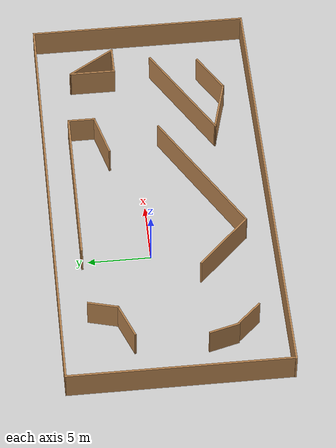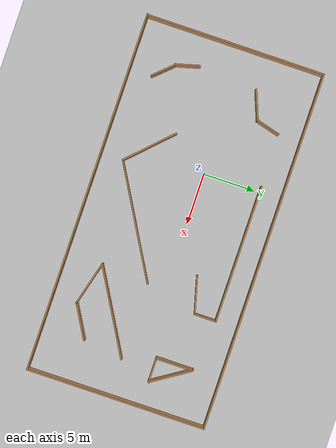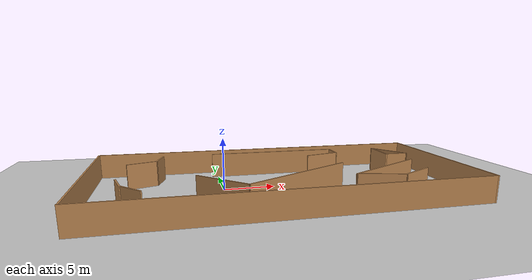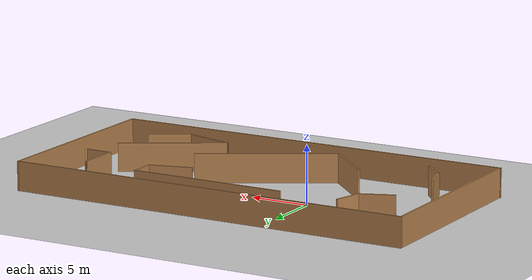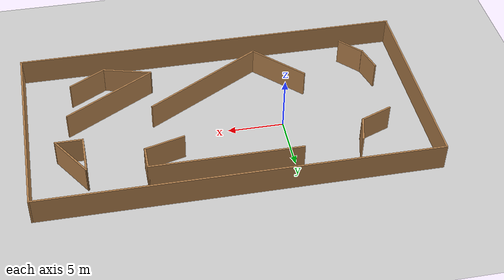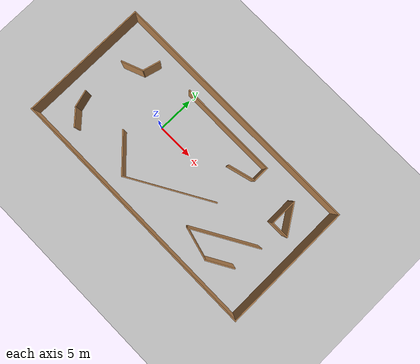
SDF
<sdf version="1.6">
 <world name="default">
  <light name="sun" type="directional">
   <pose>0 0 10 0 -0 0</pose>
   <diffuse>0.8 0.8 0.8 1</diffuse>
   <specular>0.2 0.2 0.2 1</specular>
   <attenuation>
    <range>1000</range>
    <constant>0.9</constant>
    <linear>0.01</linear>
    <quadratic>0.001</quadratic>
   </attenuation>
   <direction>-0.5 0.1 -0.9</direction>
  </light>
  <model name="ground_plane">
   <static>1</static>
   <link name="link">
    <collision name="collision">
     <geometry><plane><normal>0 0 1</normal><size>100 100</size></plane></geometry>
     <surface>
      <contact><collide_bitmask>65535</collide_bitmask></contact>
      <friction><ode><mu>100</mu><mu2>50</mu2></ode></friction>
     </surface>
    </collision>
    <visual name="visual">
     <cast_shadows>0</cast_shadows>
     <geometry><plane><normal>0 0 1</normal><size>100 100</size></plane></geometry>
     <material>
      <script><uri>file://media/materials/scripts/gazebo.material</uri><name>Gazebo/Grey</name></script>
     </material>
    </visual>
   </link>
  </model>
  <gravity>0 0 -9.8</gravity>
  <magnetic_field>6e-06 2.3e-05 -4.2e-05</magnetic_field>
  <atmosphere type="adiabatic"/>
  <physics name="default_physics" default="0" type="ode">
   <max_step_size>0.001</max_step_size>
   <real_time_factor>1</real_time_factor>
   <real_time_update_rate>1000</real_time_update_rate>
  </physics>
  <scene><ambient>0.4 0.4 0.4 1</ambient><background>0.7 0.7 0.7 1</background><shadows>1</shadows></scene>
  <audio><device>default</device></audio>
  <spherical_coordinates>
   <surface_model>EARTH_WGS84</surface_model>
   <latitude_deg>0</latitude_deg>
   <longitude_deg>0</longitude_deg>
   <elevation>0</elevation>
   <heading_deg>0</heading_deg>
  </spherical_coordinates>
  <model name="Sandbox_nav">
   <pose>5.14917 -1.10159 0 0 -0 0</pose>
   <link name="Wall_10">
    <collision name="Wall_10_Collision">
     <geometry><box><size>2.5 0.15 2.5</size></box></geometry>
     <pose>0 0 1.25 0 -0 0</pose>
    </collision>
    <visual name="Wall_10_Visual">
     <pose>0 0 1.25 0 -0 0</pose>
     <geometry><box><size>2.5 0.15 2.5</size></box></geometry>
     <material>
      <script><uri>file://media/materials/scripts/gazebo.material</uri><name>Gazebo/Wood</name></script>
      <ambient>1 1 1 1</ambient>
     </material>
     <meta><layer>0</layer></meta>
    </visual>
    <pose>-11.1858 5.38005 0 0 -0 -1.8326</pose>
   </link>
   <link name="Wall_11">
    <collision name="Wall_11_Collision">
     <geometry><box><size>3.04858 0.15 2.5</size></box></geometry>
     <pose>0 0 1.25 0 -0 0</pose>
    </collision>
    <visual name="Wall_11_Visual">
     <pose>0 0 1.25 0 -0 0</pose>
     <geometry><box><size>3.04858 0.15 2.5</size></box></geometry>
     <material>
      <script><uri>file://media/materials/scripts/gazebo.material</uri><name>Gazebo/Wood</name></script>
      <ambient>1 1 1 1</ambient>
     </material>
     <meta><layer>0</layer></meta>
    </visual>
    <pose>-12.8406 3.71958 0 0 -0 -2.77054</pose>
   </link>
   <link name="Wall_13">
    <collision name="Wall_13_Collision">
     <geometry><box><size>13.5 0.15 2.5</size></box></geometry>
     <pose>0 0 1.25 0 -0 0</pose>
    </collision>
    <visual name="Wall_13_Visual">
     <pose>0 0 1.25 0 -0 0</pose>
     <geometry><box><size>13.5 0.15 2.5</size></box></geometry>
     <material>
      <script><uri>file://media/materials/scripts/gazebo.material</uri><name>Gazebo/Wood</name></script>
      <ambient>1 1 1 1</ambient>
     </material>
     <meta><layer>0</layer></meta>
    </visual>
    <pose>0.975034 6.59525 0 0 -0 0</pose>
   </link>
   <link name="Wall_14">
    <collision name="Wall_14_Collision">
     <geometry><box><size>2.25 0.15 2.5</size></box></geometry>
     <pose>0 0 1.25 0 -0 0</pose>
    </collision>
    <visual name="Wall_14_Visual">
     <pose>0 0 1.25 0 -0 0</pose>
     <geometry><box><size>2.25 0.15 2.5</size></box></geometry>
     <material>
      <script><uri>file://media/materials/scripts/gazebo.material</uri><name>Gazebo/Wood</name></script>
      <ambient>1 1 1 1</ambient>
     </material>
     <meta><layer>0</layer></meta>
    </visual>
    <pose>7.65003 5.54525 0 0 -0 -1.5708</pose>
   </link>
   <link name="Wall_15">
    <collision name="Wall_15_Collision">
     <geometry><box><size>3.75 0.15 2.5</size></box></geometry>
     <pose>0 0 1.25 0 -0 0</pose>
    </collision>
    <visual name="Wall_15_Visual">
     <pose>0 0 1.25 0 -0 0</pose>
     <geometry><box><size>3.75 0.15 2.5</size></box></geometry>
     <material>
      <script><uri>file://media/materials/scripts/gazebo.material</uri><name>Gazebo/Wood</name></script>
      <ambient>1 1 1 1</ambient>
     </material>
     <meta><layer>0</layer></meta>
    </visual>
    <pose>5.91137 4.02938 0 0 -0 -2.87979</pose>
   </link>
   <link name="Wall_17">
    <collision name="Wall_17_Collision">
     <geometry><box><size>2.5 0.15 2.5</size></box></geometry>
     <pose>0 0 1.25 0 -0 0</pose>
    </collision>
    <visual name="Wall_17_Visual">
     <pose>0 0 1.25 0 -0 0</pose>
     <geometry><box><size>2.5 0.15 2.5</size></box></geometry>
     <material>
      <script><uri>file://media/materials/scripts/gazebo.material</uri><name>Gazebo/Wood</name></script>
      <ambient>1 1 1 1</ambient>
     </material>
     <meta><layer>0</layer></meta>
    </visual>
    <pose>-14.2871 -3.67129 0 0 -0 -1.309</pose>
   </link>
   <link name="Wall_18">
    <collision name="Wall_18_Collision">
     <geometry><box><size>2.53676 0.15 2.5</size></box></geometry>
     <pose>0 0 1.25 0 -0 0</pose>
    </collision>
    <visual name="Wall_18_Visual">
     <pose>0 0 1.25 0 -0 0</pose>
     <geometry><box><size>2.53676 0.15 2.5</size></box></geometry>
     <material>
      <script><uri>file://media/materials/scripts/gazebo.material</uri><name>Gazebo/Wood</name></script>
      <ambient>1 1 1 1</ambient>
     </material>
     <meta><layer>0</layer></meta>
    </visual>
    <pose>-13.0985 -5.67914 0 0 -0 -0.820423</pose>
   </link>
   <link name="Wall_20">
    <collision name="Wall_20_Collision">
     <geometry><box><size>5.75 0.15 2.5</size></box></geometry>
     <pose>0 0 1.25 0 -0 0</pose>
    </collision>
    <visual name="Wall_20_Visual">
     <pose>0 0 1.25 0 -0 0</pose>
     <geometry><box><size>5.75 0.15 2.5</size></box></geometry>
     <material>
      <script><uri>file://media/materials/scripts/gazebo.material</uri><name>Gazebo/Wood</name></script>
      <ambient>1 1 1 1</ambient>
     </material>
     <meta><layer>0</layer></meta>
    </visual>
    <pose>-5.88942 -4.58699 0 0 -0 -0.785398</pose>
   </link>
   <link name="Wall_21">
    <collision name="Wall_21_Collision">
     <geometry><box><size>12 0.15 2.5</size></box></geometry>
     <pose>0 0 1.25 0 -0 0</pose>
    </collision>
    <visual name="Wall_21_Visual">
     <pose>0 0 1.25 0 -0 0</pose>
     <geometry><box><size>12 0.15 2.5</size></box></geometry>
     <material>
      <script><uri>file://media/materials/scripts/gazebo.material</uri><name>Gazebo/Wood</name></script>
      <ambient>1 1 1 1</ambient>
     </material>
     <meta><layer>0</layer></meta>
    </visual>
    <pose>1.22168 -3.60439 0 0 -0 0.523599</pose>
   </link>
   <link name="Wall_23">
    <collision name="Wall_23_Collision">
     <geometry><box><size>9.25 0.15 2.5</size></box></geometry>
     <pose>0 0 1.25 0 -0 0</pose>
    </collision>
    <visual name="Wall_23_Visual">
     <pose>0 0 1.25 0 -0 0</pose>
     <geometry><box><size>9.25 0.15 2.5</size></box></geometry>
     <material>
      <script><uri>file://media/materials/scripts/gazebo.material</uri><name>Gazebo/Wood</name></script>
      <ambient>1 1 1 1</ambient>
     </material>
     <meta><layer>0</layer></meta>
    </visual>
    <pose>9.91268 -2.97165 0 0 -0 -2.61799</pose>
   </link>
   <link name="Wall_24">
    <collision name="Wall_24_Collision">
     <geometry><box><size>4.5 0.15 2.5</size></box></geometry>
     <pose>0 0 1.25 0 -0 0</pose>
    </collision>
    <visual name="Wall_24_Visual">
     <pose>0 0 1.25 0 -0 0</pose>
     <geometry><box><size>4.5 0.15 2.5</size></box></geometry>
     <material>
      <script><uri>file://media/materials/scripts/gazebo.material</uri><name>Gazebo/Wood</name></script>
      <ambient>1 1 1 1</ambient>
     </material>
     <meta><layer>0</layer></meta>
    </visual>
    <pose>8.07316 -5.80958 0 0 -0 -0.261799</pose>
   </link>
   <link name="Wall_25">
    <collision name="Wall_25_Collision">
     <geometry><box><size>3.75 0.15 2.5</size></box></geometry>
     <pose>0 0 1.25 0 -0 0</pose>
    </collision>
    <visual name="Wall_25_Visual">
     <pose>0 0 1.25 0 -0 0</pose>
     <geometry><box><size>3.75 0.15 2.5</size></box></geometry>
     <material>
      <script><uri>file://media/materials/scripts/gazebo.material</uri><name>Gazebo/Wood</name></script>
      <ambient>1 1 1 1</ambient>
     </material>
     <meta><layer>0</layer></meta>
    </visual>
    <pose>11.7329 -5.47251 0 0 -0 0.523599</pose>
   </link>
   <link name="Wall_27">
    <collision name="Wall_27_Collision">
     <geometry><box><size>3.75 0.15 2.5</size></box></geometry>
     <pose>0 0 1.25 0 -0 0</pose>
    </collision>
    <visual name="Wall_27_Visual">
     <pose>0 0 1.25 0 -0 0</pose>
     <geometry><box><size>3.75 0.15 2.5</size></box></geometry>
     <material>
      <script><uri>file://media/materials/scripts/gazebo.material</uri><name>Gazebo/Wood</name></script>
      <ambient>1 1 1 1</ambient>
     </material>
     <meta><layer>0</layer></meta>
    </visual>
    <pose>12.721 4.22527 0 0 -0 -1.5708</pose>
   </link>
   <link name="Wall_29">
    <collision name="Wall_29_Collision">
     <geometry><box><size>2.5 0.15 2.5</size></box></geometry>
     <pose>0 0 1.25 0 -0 0</pose>
    </collision>
    <visual name="Wall_29_Visual">
     <pose>0 0 1.25 0 -0 0</pose>
     <geometry><box><size>2.5 0.15 2.5</size></box></geometry>
     <material>
      <script><uri>file://media/materials/scripts/gazebo.material</uri><name>Gazebo/Wood</name></script>
      <ambient>1 1 1 1</ambient>
     </material>
     <meta><layer>0</layer></meta>
    </visual>
    <pose>13.896 2.42527 0 0 -0 0</pose>
   </link>
   <link name="Wall_3">
    <collision name="Wall_3_Collision">
     <geometry><box><size>35.25 0.15 2.5</size></box></geometry>
     <pose>0 0 1.25 0 -0 0</pose>
    </collision>
    <visual name="Wall_3_Visual">
     <pose>0 0 1.25 0 -0 0</pose>
     <geometry><box><size>35.25 0.15 2.5</size></box></geometry>
     <material>
      <script><uri>file://media/materials/scripts/gazebo.material</uri><name>Gazebo/Wood</name></script>
      <ambient>1 1 1 1</ambient>
     </material>
     <meta><layer>0</layer></meta>
    </visual>
    <pose>-0.035457 -8.75637 0 0 -0 0</pose>
   </link>
   <link name="Wall_30">
    <collision name="Wall_30_Collision">
     <geometry><box><size>4.44913 0.15 2.5</size></box></geometry>
     <pose>0 0 1.25 0 -0 0</pose>
    </collision>
    <visual name="Wall_30_Visual">
     <pose>0 0 1.25 0 -0 0</pose>
     <geometry><box><size>4.44913 0.15 2.5</size></box></geometry>
     <material>
      <script><uri>file://media/materials/scripts/gazebo.material</uri><name>Gazebo/Wood</name></script>
      <ambient>1 1 1 1</ambient>
     </material>
     <meta><layer>0</layer></meta>
    </visual>
    <pose>13.896 4.22527 0 0 -0 2.14912</pose>
   </link>
   <link name="Wall_4">
    <collision name="Wall_4_Collision">
     <geometry><box><size>17.6631 0.15 2.5</size></box></geometry>
     <pose>0 0 1.25 0 -0 0</pose>
    </collision>
    <visual name="Wall_4_Visual">
     <pose>0 0 1.25 0 -0 0</pose>
     <geometry><box><size>17.6631 0.15 2.5</size></box></geometry>
     <material>
      <script><uri>file://media/materials/scripts/gazebo.material</uri><name>Gazebo/Wood</name></script>
      <ambient>1 1 1 1</ambient>
     </material>
     <meta><layer>0</layer></meta>
    </visual>
    <pose>17.5671 -0 0 0 -0 1.57287</pose>
   </link>
   <link name="Wall_5">
    <collision name="Wall_5_Collision">
     <geometry><box><size>35.25 0.15 2.5</size></box></geometry>
     <pose>0 0 1.25 0 -0 0</pose>
    </collision>
    <visual name="Wall_5_Visual">
     <pose>0 0 1.25 0 -0 0</pose>
     <geometry><box><size>35.25 0.15 2.5</size></box></geometry>
     <material>
      <script><uri>file://media/materials/scripts/gazebo.material</uri><name>Gazebo/Wood</name></script>
      <ambient>1 1 1 1</ambient>
     </material>
     <meta><layer>0</layer></meta>
    </visual>
    <pose>-0.001077 8.75637 0 0 -0 3.14159</pose>
   </link>
   <link name="Wall_6">
    <collision name="Wall_6_Collision">
     <geometry><box><size>17.5 0.15 2.5</size></box></geometry>
     <pose>0 0 1.25 0 -0 0</pose>
    </collision>
    <visual name="Wall_6_Visual">
     <pose>0 0 1.25 0 -0 0</pose>
     <geometry><box><size>17.5 0.15 2.5</size></box></geometry>
     <material>
      <script><uri>file://media/materials/scripts/gazebo.material</uri><name>Gazebo/Wood</name></script>
      <ambient>1 1 1 1</ambient>
     </material>
     <meta><layer>0</layer></meta>
    </visual>
    <pose>-17.5511 0.081367 0 0 -0 -1.5708</pose>
   </link>
   <static>1</static>
  </model>
  <physics name="ode_70iters" type="ode">
   <real_time_update_rate>1500</real_time_update_rate>
   <ode><solver><type>quick</type><iters>70</iters></solver></ode>
  </physics>
 </world>
</sdf>
